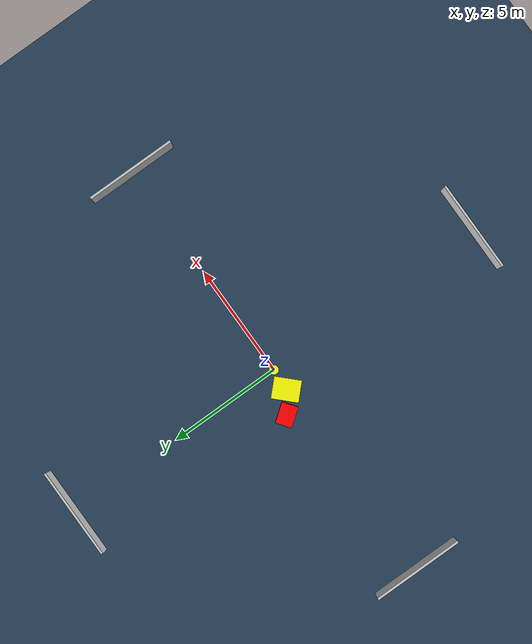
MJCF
<?xml version="1.0" ?>
<mujoco model="generated_environment">
  <option timestep="0.01" integrator="RK4" cone="elliptic"/>
  <default>
    <geom density="1"/>
  </default>
  <asset>
    <texture builtin="gradient" height="3072" name="skybox" rgb1="0.3 0.5 0.7" rgb2="0 0 0" type="skybox" width="512"/>
    <texture builtin="checker" height="300" name="groundplane" rgb1="0.2 0.3 0.4" rgb2="0.1 0.2 0.3" type="2d" width="300"/>
    <material name="groundplane" reflectance="0.2" texrepeat="5 5" texture="groundplane"/>
  </asset>
  <worldbody>
    <light dir="0 0 -1" directional="true" pos="0 0 1.5"/>
    <geom condim="3" friction="0.5 0.005 0.001" material="groundplane" name="floor" pos="0 0 0" size="0 0 0.05" type="plane"/>
    <body name="walls">
      <geom name="wall_1" condim="4" pos="-10.0 0.0 0.3" rgba="0.800000011920929 0.800000011920929 0.800000011920929 1.0" size="0.05 2.0 0.3" type="box"/>
      <geom name="wall_2" condim="4" pos="10.0 0.0 0.3" rgba="0.800000011920929 0.800000011920929 0.800000011920929 1.0" size="0.05 2.0 0.3" type="box"/>
      <geom name="wall_3" condim="4" pos="0.0 -10.0 0.3" rgba="0.800000011920929 0.800000011920929 0.800000011920929 1.0" size="2.0 0.05 0.3" type="box"/>
      <geom name="wall_4" condim="4" pos="0.0 10.0 0.3" rgba="0.800000011920929 0.800000011920929 0.800000011920929 1.0" size="2.0 0.05 0.3" type="box"/>
    </body>
    <body name="robot">
      <joint name="joint_x" type="slide" pos="0 0 0" axis="1 0 0"/>
      <joint name="joint_y" type="slide" pos="0 0 0" axis="0 1 0"/>
      <geom name="robot" type="cylinder" pos="0.0 0.0 0.2" size="0.2 0.2 0.0" mass="5.0" friction="1.0 0.005 0.0001" condim="4" rgba="1.0 1.0 0.0 1.0"/>
    </body>
    <body name="obstacle_1_movable">
      <geom name="obstacle_1_movable" condim="4" pos="-0.9445491874118744 0.056834884018872794 0.3" euler="0 0 315.28941127125125" friction="0.0 0.005 0.001" rgba="1.0 1.0 0.0 1.0" size="0.45888834788624444 0.5712661220637858 0.3" type="box" mass="0.1"/>
      <joint type="free"/>
    </body>
    <body name="obstacle_2_static">
      <geom name="obstacle_2_static" condim="4" pos="-1.794209171645057 0.6432494704141782 0.3" euler="0 0 216.684692565342" friction="0.0 0.005 0.001" rgba="1.0 0.0 0.0 1.0" size="0.3503955673959369 0.44663820993961745 0.3" type="box"/>
    </body>
  </worldbody>
  <actuator>
    <motor name="actuator_x" joint="joint_x" gear="1" ctrlrange="-1 1"/>
    <motor name="actuator_y" joint="joint_y" gear="1" ctrlrange="-1 1"/>
  </actuator>
</mujoco>
